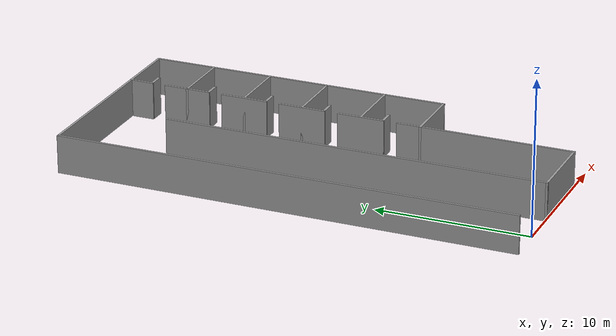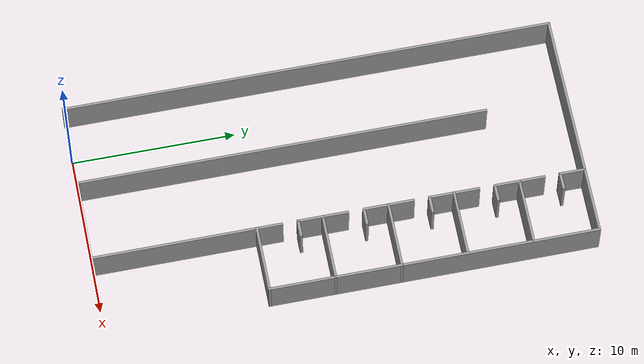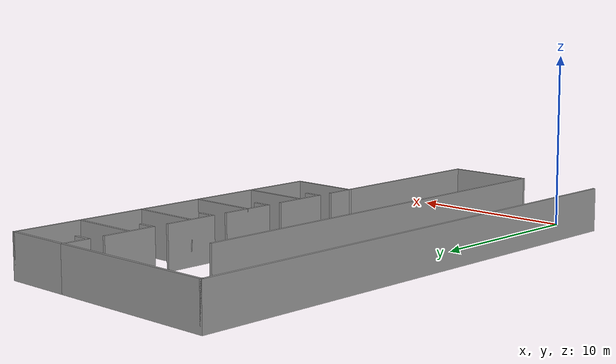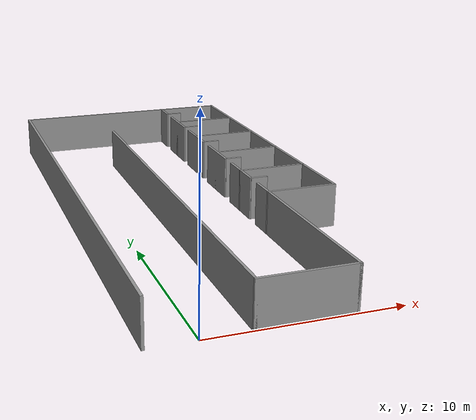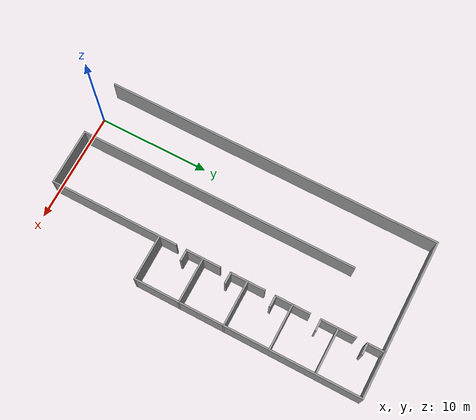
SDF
<?xml version='1.0'?>
<sdf version='1.7'>
  <model name='World_map'>
    <pose>4.5 15 0 0 -0 0</pose>
    <link name='Door_10'>
      <collision name='Door_10_Collision'>
        <geometry>
          <box>
            <size>1 0.17 2.5</size>
          </box>
        </geometry>
        <pose>0 0 1.25 0 -0 0</pose>
      </collision>
      <visual name='Door_10_Visual'>
        <pose>0 0 1.25 0 -0 0</pose>
        <geometry>
          <box>
            <size>1 0.17 2.5</size>
          </box>
        </geometry>
        <material>
          <script>
            <uri>file://media/materials/scripts/gazebo.material</uri>
            <name>Gazebo/Grey</name>
          </script>
        </material>
      </visual>
      <pose>3.5 5.5 0 0 -0 0</pose>
    </link>
    <link name='Door_6'>
      <collision name='Door_6_Collision'>
        <geometry>
          <box>
            <size>1 0.17 2.5</size>
          </box>
        </geometry>
        <pose>0 0 1.25 0 -0 0</pose>
      </collision>
      <visual name='Door_6_Visual'>
        <pose>0 0 1.25 0 -0 0</pose>
        <geometry>
          <box>
            <size>1 0.17 2.5</size>
          </box>
        </geometry>
        <material>
          <script>
            <uri>file://media/materials/scripts/gazebo.material</uri>
            <name>Gazebo/Grey</name>
          </script>
        </material>
      </visual>
      <pose>3.5 9.5 0 0 -0 0</pose>
    </link>
    <link name='Door_7'>
      <collision name='Door_7_Collision'>
        <geometry>
          <box>
            <size>1 0.17 2.5</size>
          </box>
        </geometry>
        <pose>0 0 1.25 0 -0 0</pose>
      </collision>
      <visual name='Door_7_Visual'>
        <pose>0 0 1.25 0 -0 0</pose>
        <geometry>
          <box>
            <size>1 0.17 2.5</size>
          </box>
        </geometry>
        <material>
          <script>
            <uri>file://media/materials/scripts/gazebo.material</uri>
            <name>Gazebo/Grey</name>
          </script>
        </material>
      </visual>
      <pose>3.5 -2.5 0 0 -0 0</pose>
    </link>
    <link name='Door_8'>
      <collision name='Door_8_Collision'>
        <geometry>
          <box>
            <size>1 0.17 2.5</size>
          </box>
        </geometry>
        <pose>0 0 1.25 0 -0 0</pose>
      </collision>
      <visual name='Door_8_Visual'>
        <pose>0 0 1.25 0 -0 0</pose>
        <geometry>
          <box>
            <size>1 0.17 2.5</size>
          </box>
        </geometry>
        <material>
          <script>
            <uri>file://media/materials/scripts/gazebo.material</uri>
            <name>Gazebo/Grey</name>
          </script>
        </material>
      </visual>
      <pose>3.5 1.5 0 0 -0 0</pose>
    </link>
    <link name='Door_9'>
      <collision name='Door_9_Collision'>
        <geometry>
          <box>
            <size>1 0.17 2.5</size>
          </box>
        </geometry>
        <pose>0 0 1.25 0 -0 0</pose>
      </collision>
      <visual name='Door_9_Visual'>
        <pose>0 0 1.25 0 -0 0</pose>
        <geometry>
          <box>
            <size>1 0.17 2.5</size>
          </box>
        </geometry>
        <material>
          <script>
            <uri>file://media/materials/scripts/gazebo.material</uri>
            <name>Gazebo/Grey</name>
          </script>
        </material>
      </visual>
      <pose>3.5 13.5 0 0 -0 0</pose>
    </link>
    <link name='Wall_28'>
      <collision name='Wall_28_Collision'>
        <geometry>
          <box>
            <size>3.15 0.15 2.5</size>
          </box>
        </geometry>
        <pose>0 0 1.25 0 -0 0</pose>
      </collision>
      <visual name='Wall_28_Visual'>
        <pose>0 0 1.25 0 -0 0</pose>
        <geometry>
          <box>
            <size>3.15 0.15 2.5</size>
          </box>
        </geometry>
        <material>
          <script>
            <uri>file://media/materials/scripts/gazebo.material</uri>
            <name>Gazebo/Grey</name>
          </script>
          <ambient>1 1 1 1</ambient>
        </material>
        <meta>
          <layer>0</layer>
        </meta>
      </visual>
      <pose>3 7 0 0 -0 -1.5708</pose>
    </link>
    <link name='Wall_30'>
      <collision name='Wall_30_Collision'>
        <geometry>
          <box>
            <size>3.15 0.15 2.5</size>
          </box>
        </geometry>
        <pose>0 0 1.25 0 -0 0</pose>
      </collision>
      <visual name='Wall_30_Visual'>
        <pose>0 0 1.25 0 -0 0</pose>
        <geometry>
          <box>
            <size>3.15 0.15 2.5</size>
          </box>
        </geometry>
        <material>
          <script>
            <uri>file://media/materials/scripts/gazebo.material</uri>
            <name>Gazebo/Grey</name>
          </script>
          <ambient>1 1 1 1</ambient>
        </material>
        <meta>
          <layer>0</layer>
        </meta>
      </visual>
      <pose>3 11 0 0 -0 -1.5708</pose>
    </link>
    <link name='Wall_32'>
      <collision name='Wall_32_Collision'>
        <geometry>
          <box>
            <size>3.15 0.15 2.5</size>
          </box>
        </geometry>
        <pose>0 0 1.25 0 -0 0</pose>
      </collision>
      <visual name='Wall_32_Visual'>
        <pose>0 0 1.25 0 -0 0</pose>
        <geometry>
          <box>
            <size>3.15 0.15 2.5</size>
          </box>
        </geometry>
        <material>
          <script>
            <uri>file://media/materials/scripts/gazebo.material</uri>
            <name>Gazebo/Grey</name>
          </script>
          <ambient>1 1 1 1</ambient>
        </material>
        <meta>
          <layer>0</layer>
        </meta>
      </visual>
      <pose>3 3 0 0 -0 -1.5708</pose>
    </link>
    <link name='Wall_34'>
      <collision name='Wall_34_Collision'>
        <geometry>
          <box>
            <size>3.15 0.15 2.5</size>
          </box>
        </geometry>
        <pose>0 0 1.25 0 -0 0</pose>
      </collision>
      <visual name='Wall_34_Visual'>
        <pose>0 0 1.25 0 -0 0</pose>
        <geometry>
          <box>
            <size>3.15 0.15 2.5</size>
          </box>
        </geometry>
        <material>
          <script>
            <uri>file://media/materials/scripts/gazebo.material</uri>
            <name>Gazebo/Grey</name>
          </script>
          <ambient>1 1 1 1</ambient>
        </material>
        <meta>
          <layer>0</layer>
        </meta>
      </visual>
      <pose>3 -1 0 0 -0 -1.5708</pose>
    </link>
    <link name='Wall_36'>
      <collision name='Wall_36_Collision'>
        <geometry>
          <box>
            <size>4.15 0.15 2.5</size>
          </box>
        </geometry>
        <pose>0 0 1.25 0 -0 0</pose>
      </collision>
      <visual name='Wall_36_Visual'>
        <pose>0 0 1.25 0 -0 0</pose>
        <geometry>
          <box>
            <size>4.15 0.15 2.5</size>
          </box>
        </geometry>
        <material>
          <script>
            <uri>file://media/materials/scripts/gazebo.material</uri>
            <name>Gazebo/Grey</name>
          </script>
          <ambient>1 1 1 1</ambient>
        </material>
        <meta>
          <layer>0</layer>
        </meta>
      </visual>
      <pose>5 15 0 0 -0 0</pose>
    </link>
    <link name='Wall_38'>
      <collision name='Wall_38_Collision'>
        <geometry>
          <box>
            <size>4.15 0.15 2.5</size>
          </box>
        </geometry>
        <pose>0 0 1.25 0 -0 0</pose>
      </collision>
      <visual name='Wall_38_Visual'>
        <pose>0 0 1.25 0 -0 0</pose>
        <geometry>
          <box>
            <size>4.15 0.15 2.5</size>
          </box>
        </geometry>
        <material>
          <script>
            <uri>file://media/materials/scripts/gazebo.material</uri>
            <name>Gazebo/Grey</name>
          </script>
          <ambient>1 1 1 1</ambient>
        </material>
        <meta>
          <layer>0</layer>
        </meta>
      </visual>
      <pose>5 11 0 0 -0 0</pose>
    </link>
    <link name='Wall_40'>
      <collision name='Wall_40_Collision'>
        <geometry>
          <box>
            <size>4.15 0.15 2.5</size>
          </box>
        </geometry>
        <pose>0 0 1.25 0 -0 0</pose>
      </collision>
      <visual name='Wall_40_Visual'>
        <pose>0 0 1.25 0 -0 0</pose>
        <geometry>
          <box>
            <size>4.15 0.15 2.5</size>
          </box>
        </geometry>
        <material>
          <script>
            <uri>file://media/materials/scripts/gazebo.material</uri>
            <name>Gazebo/Grey</name>
          </script>
          <ambient>1 1 1 1</ambient>
        </material>
        <meta>
          <layer>0</layer>
        </meta>
      </visual>
      <pose>5 7 0 0 -0 0</pose>
    </link>
    <link name='Wall_42'>
      <collision name='Wall_42_Collision'>
        <geometry>
          <box>
            <size>5.15 0.15 2.5</size>
          </box>
        </geometry>
        <pose>0 0 1.25 0 -0 0</pose>
      </collision>
      <visual name='Wall_42_Visual'>
        <pose>0 0 1.25 0 -0 0</pose>
        <geometry>
          <box>
            <size>5.15 0.15 2.5</size>
          </box>
        </geometry>
        <material>
          <script>
            <uri>file://media/materials/scripts/gazebo.material</uri>
            <name>Gazebo/Grey</name>
          </script>
          <ambient>1 1 1 1</ambient>
        </material>
        <meta>
          <layer>0</layer>
        </meta>
      </visual>
      <pose>0.5 -15 0 0 -0 0</pose>
    </link>
    <link name='Wall_44'>
      <collision name='Wall_44_Collision'>
        <geometry>
          <box>
            <size>25.15 0.15 2.5</size>
          </box>
        </geometry>
        <pose>0 0 1.25 0 -0 0</pose>
      </collision>
      <visual name='Wall_44_Visual'>
        <pose>0 0 1.25 0 -0 0</pose>
        <geometry>
          <box>
            <size>25.15 0.15 2.5</size>
          </box>
        </geometry>
        <material>
          <script>
            <uri>file://media/materials/scripts/gazebo.material</uri>
            <name>Gazebo/Grey</name>
          </script>
          <ambient>1 1 1 1</ambient>
        </material>
        <meta>
          <layer>0</layer>
        </meta>
      </visual>
      <pose>-2 -2.5 0 0 -0 1.5708</pose>
    </link>
    <link name='Wall_46'>
      <collision name='Wall_46_Collision'>
        <geometry>
          <box>
            <size>10.15 0.15 2.5</size>
          </box>
        </geometry>
        <pose>0 0 1.25 0 -0 0</pose>
      </collision>
      <visual name='Wall_46_Visual'>
        <pose>0 0 1.25 0 -0 0</pose>
        <geometry>
          <box>
            <size>10.15 0.15 2.5</size>
          </box>
        </geometry>
        <material>
          <script>
            <uri>file://media/materials/scripts/gazebo.material</uri>
            <name>Gazebo/Grey</name>
          </script>
          <ambient>1 1 1 1</ambient>
        </material>
        <meta>
          <layer>0</layer>
        </meta>
      </visual>
      <pose>-2 15 0 0 -0 0</pose>
    </link>
    <link name='Wall_48'>
      <collision name='Wall_48_Collision'>
        <geometry>
          <box>
            <size>4.15 0.15 2.5</size>
          </box>
        </geometry>
        <pose>0 0 1.25 0 -0 0</pose>
      </collision>
      <visual name='Wall_48_Visual'>
        <pose>0 0 1.25 0 -0 0</pose>
        <geometry>
          <box>
            <size>4.15 0.15 2.5</size>
          </box>
        </geometry>
        <material>
          <script>
            <uri>file://media/materials/scripts/gazebo.material</uri>
            <name>Gazebo/Grey</name>
          </script>
          <ambient>1 1 1 1</ambient>
        </material>
        <meta>
          <layer>0</layer>
        </meta>
      </visual>
      <pose>5 3 0 0 -0 0</pose>
    </link>
    <link name='Wall_50'>
      <collision name='Wall_50_Collision'>
        <geometry>
          <box>
            <size>1.65 0.15 2.5</size>
          </box>
        </geometry>
        <pose>0 0 1.25 0 -0 0</pose>
      </collision>
      <visual name='Wall_50_Visual'>
        <pose>0 0 1.25 0 -0 0</pose>
        <geometry>
          <box>
            <size>1.65 0.15 2.5</size>
          </box>
        </geometry>
        <material>
          <script>
            <uri>file://media/materials/scripts/gazebo.material</uri>
            <name>Gazebo/Grey</name>
          </script>
          <ambient>1 1 1 1</ambient>
        </material>
        <meta>
          <layer>0</layer>
        </meta>
      </visual>
      <pose>3 14.25 0 0 -0 -1.5708</pose>
    </link>
    <link name='Wall_52'>
      <collision name='Wall_52_Collision'>
        <geometry>
          <box>
            <size>11.65 0.15 2.5</size>
          </box>
        </geometry>
        <pose>0 0 1.25 0 -0 0</pose>
      </collision>
      <visual name='Wall_52_Visual'>
        <pose>0 0 1.25 0 -0 0</pose>
        <geometry>
          <box>
            <size>11.65 0.15 2.5</size>
          </box>
        </geometry>
        <material>
          <script>
            <uri>file://media/materials/scripts/gazebo.material</uri>
            <name>Gazebo/Grey</name>
          </script>
          <ambient>1 1 1 1</ambient>
        </material>
        <meta>
          <layer>0</layer>
        </meta>
      </visual>
      <pose>3 -9.25 0 0 -0 -1.5708</pose>
    </link>
    <link name='Wall_54'>
      <collision name='Wall_54_Collision'>
        <geometry>
          <box>
            <size>4.15 0.15 2.5</size>
          </box>
        </geometry>
        <pose>0 0 1.25 0 -0 0</pose>
      </collision>
      <visual name='Wall_54_Visual'>
        <pose>0 0 1.25 0 -0 0</pose>
        <geometry>
          <box>
            <size>4.15 0.15 2.5</size>
          </box>
        </geometry>
        <material>
          <script>
            <uri>file://media/materials/scripts/gazebo.material</uri>
            <name>Gazebo/Grey</name>
          </script>
          <ambient>1 1 1 1</ambient>
        </material>
        <meta>
          <layer>0</layer>
        </meta>
      </visual>
      <pose>5 -1 0 0 -0 0</pose>
    </link>
    <link name='Wall_56'>
      <collision name='Wall_56_Collision'>
        <geometry>
          <box>
            <size>4.15 0.15 2.5</size>
          </box>
        </geometry>
        <pose>0 0 1.25 0 -0 0</pose>
      </collision>
      <visual name='Wall_56_Visual'>
        <pose>0 0 1.25 0 -0 0</pose>
        <geometry>
          <box>
            <size>4.15 0.15 2.5</size>
          </box>
        </geometry>
        <material>
          <script>
            <uri>file://media/materials/scripts/gazebo.material</uri>
            <name>Gazebo/Grey</name>
          </script>
          <ambient>1 1 1 1</ambient>
        </material>
        <meta>
          <layer>0</layer>
        </meta>
      </visual>
      <pose>5 -5 0 0 -0 0</pose>
    </link>
    <link name='Wall_58'>
      <collision name='Wall_58_Collision'>
        <geometry>
          <box>
            <size>30.15 0.15 2.5</size>
          </box>
        </geometry>
        <pose>0 0 1.25 0 -0 0</pose>
      </collision>
      <visual name='Wall_58_Visual'>
        <pose>0 0 1.25 0 -0 0</pose>
        <geometry>
          <box>
            <size>30.15 0.15 2.5</size>
          </box>
        </geometry>
        <material>
          <script>
            <uri>file://media/materials/scripts/gazebo.material</uri>
            <name>Gazebo/Grey</name>
          </script>
          <ambient>1 1 1 1</ambient>
        </material>
        <meta>
          <layer>0</layer>
        </meta>
      </visual>
      <pose>-7 0 0 0 -0 1.5708</pose>
    </link>
    <link name='Wall_60'>
      <collision name='Wall_60_Collision'>
        <geometry>
          <box>
            <size>20.15 0.15 2.5</size>
          </box>
        </geometry>
        <pose>0 0 1.25 0 -0 0</pose>
      </collision>
      <visual name='Wall_60_Visual'>
        <pose>0 0 1.25 0 -0 0</pose>
        <geometry>
          <box>
            <size>20.15 0.15 2.5</size>
          </box>
        </geometry>
        <material>
          <script>
            <uri>file://media/materials/scripts/gazebo.material</uri>
            <name>Gazebo/Grey</name>
          </script>
          <ambient>1 1 1 1</ambient>
        </material>
        <meta>
          <layer>0</layer>
        </meta>
      </visual>
      <pose>7 5 0 0 -0 -1.5708</pose>
    </link>
    <static>1</static>
  </model>
</sdf>
